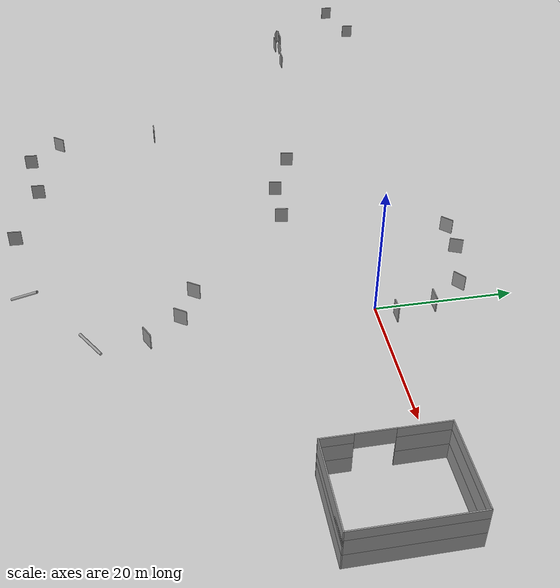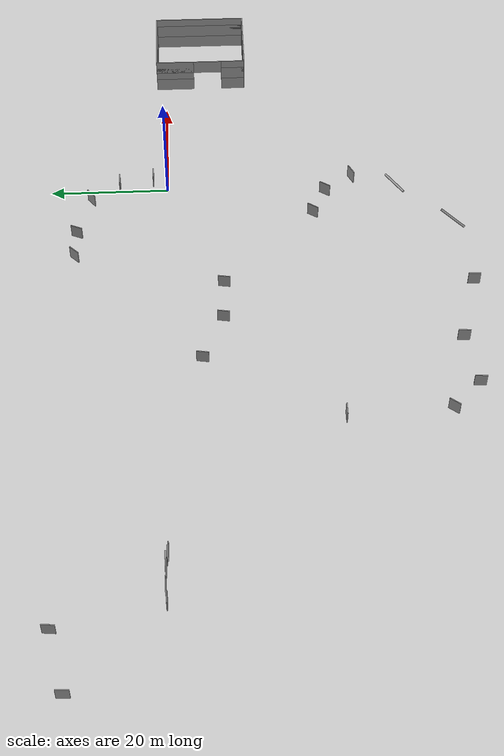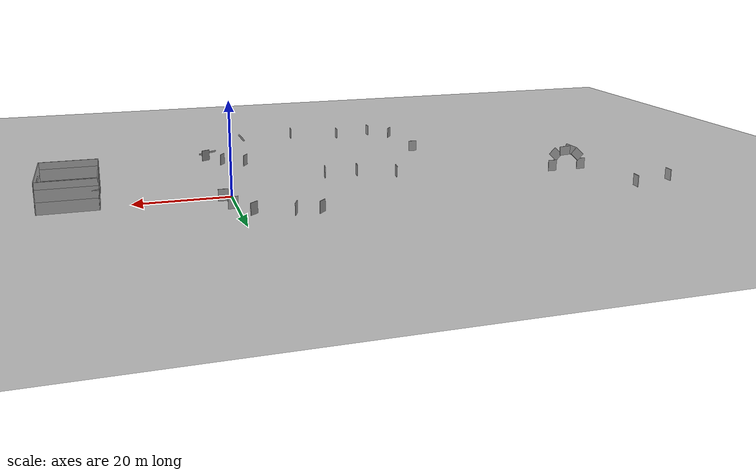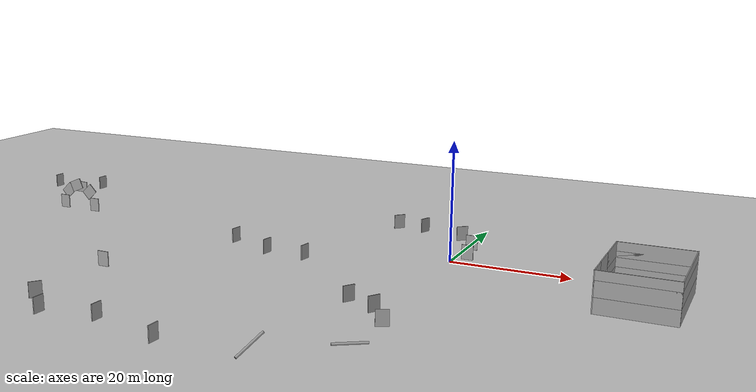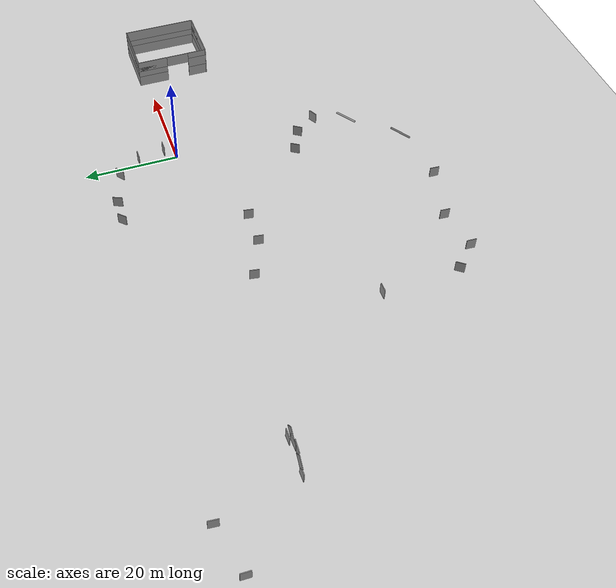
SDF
<sdf version="1.6">
 <world name="default">
  <model name="ground_plane">
   <static>1</static>
   <link name="link">
    <collision name="collision">
     <geometry><plane><normal>0 0 1</normal><size>100 100</size></plane></geometry>
     <surface><friction><ode><mu>100</mu><mu2>50</mu2></ode></friction></surface>
    </collision>
    <visual name="visual">
     <cast_shadows>0</cast_shadows>
     <geometry><plane><normal>0 0 1</normal><size>100 100</size></plane></geometry>
     <material>
      <script><uri>file://media/materials/scripts/gazebo.material</uri><name>Gazebo/Grey</name></script>
     </material>
    </visual>
   </link>
  </model>
  <model name="PaperTestTunnelHouse">
   <pose>31.9195 -6.3195 0 0 -0 0</pose>
   <link name="Wall_10">
    <collision name="Wall_10_Collision">
     <geometry><box><size>4.25 0.15 2.5</size></box></geometry>
     <pose>0 0 1.25 0 -0 0</pose>
    </collision>
    <visual name="Wall_10_Visual">
     <pose>0 0 1.25 0 -0 0</pose>
     <geometry><box><size>4.25 0.15 2.5</size></box></geometry>
     <material>
      <script><uri>file://media/materials/scripts/gazebo.material</uri><name>Gazebo/Grey</name></script>
      <ambient>1 1 1 1</ambient>
     </material>
     <meta><layer>0</layer></meta>
    </visual>
    <pose>-5.925 -5.875 0 0 -0 1.5708</pose>
   </link>
   <link name="Wall_6">
    <collision name="Wall_6_Collision">
     <geometry><box><size>6.75 0.15 2.5</size></box></geometry>
     <pose>0 0 1.25 0 -0 0</pose>
    </collision>
    <visual name="Wall_6_Visual">
     <pose>0 0 1.25 0 -0 0</pose>
     <geometry><box><size>6.75 0.15 2.5</size></box></geometry>
     <material>
      <script><uri>file://media/materials/scripts/gazebo.material</uri><name>Gazebo/Grey</name></script>
      <ambient>1 1 1 1</ambient>
     </material>
     <meta><layer>0</layer></meta>
    </visual>
    <pose>-5.925 4.625 0 0 -0 1.5708</pose>
   </link>
   <link name="Wall_7">
    <collision name="Wall_7_Collision">
     <geometry><box><size>12 0.15 2.5</size></box></geometry>
     <pose>0 0 1.25 0 -0 0</pose>
    </collision>
    <visual name="Wall_7_Visual">
     <pose>0 0 1.25 0 -0 0</pose>
     <geometry><box><size>12 0.15 2.5</size></box></geometry>
     <material>
      <script><uri>file://media/materials/scripts/gazebo.material</uri><name>Gazebo/Grey</name></script>
      <ambient>1 1 1 1</ambient>
     </material>
     <meta><layer>0</layer></meta>
    </visual>
    <pose>-0 7.925 0 0 -0 0</pose>
   </link>
   <link name="Wall_8">
    <collision name="Wall_8_Collision">
     <geometry><box><size>16 0.15 2.5</size></box></geometry>
     <pose>0 0 1.25 0 -0 0</pose>
    </collision>
    <visual name="Wall_8_Visual">
     <pose>0 0 1.25 0 -0 0</pose>
     <geometry><box><size>16 0.15 2.5</size></box></geometry>
     <material>
      <script><uri>file://media/materials/scripts/gazebo.material</uri><name>Gazebo/Grey</name></script>
      <ambient>1 1 1 1</ambient>
     </material>
     <meta><layer>0</layer></meta>
    </visual>
    <pose>5.925 0 0 0 -0 -1.5708</pose>
   </link>
   <link name="Wall_9">
    <collision name="Wall_9_Collision">
     <geometry><box><size>12 0.15 2.5</size></box></geometry>
     <pose>0 0 1.25 0 -0 0</pose>
    </collision>
    <visual name="Wall_9_Visual">
     <pose>0 0 1.25 0 -0 0</pose>
     <geometry><box><size>12 0.15 2.5</size></box></geometry>
     <material>
      <script><uri>file://media/materials/scripts/gazebo.material</uri><name>Gazebo/Grey</name></script>
      <ambient>1 1 1 1</ambient>
     </material>
     <meta><layer>0</layer></meta>
    </visual>
    <pose>-0 -7.925 0 0 -0 3.14159</pose>
   </link>
   <static>1</static>
  </model>
  <model name="PaperTestTunnelHouse_0">
   <pose>31.9195 -6.319 2.5 0 -0 0</pose>
   <link name="Wall_10">
    <collision name="Wall_10_Collision">
     <geometry><box><size>4.25 0.15 2.5</size></box></geometry>
     <pose>0 0 1.25 0 -0 0</pose>
    </collision>
    <visual name="Wall_10_Visual">
     <pose>0 0 1.25 0 -0 0</pose>
     <geometry><box><size>4.25 0.15 2.5</size></box></geometry>
     <material>
      <script><uri>file://media/materials/scripts/gazebo.material</uri><name>Gazebo/Grey</name></script>
      <ambient>1 1 1 1</ambient>
     </material>
     <meta><layer>0</layer></meta>
    </visual>
    <pose>-5.925 -5.875 0 0 -0 1.5708</pose>
   </link>
   <link name="Wall_6">
    <collision name="Wall_6_Collision">
     <geometry><box><size>6.75 0.15 2.5</size></box></geometry>
     <pose>0 0 1.25 0 -0 0</pose>
    </collision>
    <visual name="Wall_6_Visual">
     <pose>0 0 1.25 0 -0 0</pose>
     <geometry><box><size>6.75 0.15 2.5</size></box></geometry>
     <material>
      <script><uri>file://media/materials/scripts/gazebo.material</uri><name>Gazebo/Grey</name></script>
      <ambient>1 1 1 1</ambient>
     </material>
     <meta><layer>0</layer></meta>
    </visual>
    <pose>-5.925 4.625 0 0 -0 1.5708</pose>
   </link>
   <link name="Wall_7">
    <collision name="Wall_7_Collision">
     <geometry><box><size>12 0.15 2.5</size></box></geometry>
     <pose>0 0 1.25 0 -0 0</pose>
    </collision>
    <visual name="Wall_7_Visual">
     <pose>0 0 1.25 0 -0 0</pose>
     <geometry><box><size>12 0.15 2.5</size></box></geometry>
     <material>
      <script><uri>file://media/materials/scripts/gazebo.material</uri><name>Gazebo/Grey</name></script>
      <ambient>1 1 1 1</ambient>
     </material>
     <meta><layer>0</layer></meta>
    </visual>
    <pose>-0 7.925 0 0 -0 0</pose>
   </link>
   <link name="Wall_8">
    <collision name="Wall_8_Collision">
     <geometry><box><size>16 0.15 2.5</size></box></geometry>
     <pose>0 0 1.25 0 -0 0</pose>
    </collision>
    <visual name="Wall_8_Visual">
     <pose>0 0 1.25 0 -0 0</pose>
     <geometry><box><size>16 0.15 2.5</size></box></geometry>
     <material>
      <script><uri>file://media/materials/scripts/gazebo.material</uri><name>Gazebo/Grey</name></script>
      <ambient>1 1 1 1</ambient>
     </material>
     <meta><layer>0</layer></meta>
    </visual>
    <pose>5.925 0 0 0 -0 -1.5708</pose>
   </link>
   <link name="Wall_9">
    <collision name="Wall_9_Collision">
     <geometry><box><size>12 0.15 2.5</size></box></geometry>
     <pose>0 0 1.25 0 -0 0</pose>
    </collision>
    <visual name="Wall_9_Visual">
     <pose>0 0 1.25 0 -0 0</pose>
     <geometry><box><size>12 0.15 2.5</size></box></geometry>
     <material>
      <script><uri>file://media/materials/scripts/gazebo.material</uri><name>Gazebo/Grey</name></script>
      <ambient>1 1 1 1</ambient>
     </material>
     <meta><layer>0</layer></meta>
    </visual>
    <pose>-0 -7.925 0 0 -0 3.14159</pose>
   </link>
   <static>1</static>
  </model>
  <model name="5mWall">
   <pose>25.971 -7.56033 4 0 -0 0</pose>
   <link name="Wall_0">
    <collision name="Wall_0_Collision">
     <geometry><box><size>5 0.15 2.5</size></box></geometry>
     <pose>0 0 1.25 0 -0 0</pose>
    </collision>
    <visual name="Wall_0_Visual">
     <pose>0 0 1.25 0 -0 0</pose>
     <geometry><box><size>5 0.15 2.5</size></box></geometry>
     <material>
      <script><uri>file://media/materials/scripts/gazebo.material</uri><name>Gazebo/Grey</name></script>
      <ambient>1 1 1 1</ambient>
     </material>
     <meta><layer>0</layer></meta>
    </visual>
    <pose>0 -0 0 0 -0 1.5708</pose>
   </link>
   <static>1</static>
  </model>
  <model name="PaperTestTunnelHouse_1">
   <pose>31.9195 -6.319 4 0 -0 0</pose>
   <link name="Wall_10">
    <collision name="Wall_10_Collision">
     <geometry><box><size>4.25 0.15 2.5</size></box></geometry>
     <pose>0 0 1.25 0 -0 0</pose>
    </collision>
    <visual name="Wall_10_Visual">
     <pose>0 0 1.25 0 -0 0</pose>
     <geometry><box><size>4.25 0.15 2.5</size></box></geometry>
     <material>
      <script><uri>file://media/materials/scripts/gazebo.material</uri><name>Gazebo/Grey</name></script>
      <ambient>1 1 1 1</ambient>
     </material>
     <meta><layer>0</layer></meta>
    </visual>
    <pose>-5.925 -5.875 0 0 -0 1.5708</pose>
   </link>
   <link name="Wall_6">
    <collision name="Wall_6_Collision">
     <geometry><box><size>6.75 0.15 2.5</size></box></geometry>
     <pose>0 0 1.25 0 -0 0</pose>
    </collision>
    <visual name="Wall_6_Visual">
     <pose>0 0 1.25 0 -0 0</pose>
     <geometry><box><size>6.75 0.15 2.5</size></box></geometry>
     <material>
      <script><uri>file://media/materials/scripts/gazebo.material</uri><name>Gazebo/Grey</name></script>
      <ambient>1 1 1 1</ambient>
     </material>
     <meta><layer>0</layer></meta>
    </visual>
    <pose>-5.925 4.625 0 0 -0 1.5708</pose>
   </link>
   <link name="Wall_7">
    <collision name="Wall_7_Collision">
     <geometry><box><size>12 0.15 2.5</size></box></geometry>
     <pose>0 0 1.25 0 -0 0</pose>
    </collision>
    <visual name="Wall_7_Visual">
     <pose>0 0 1.25 0 -0 0</pose>
     <geometry><box><size>12 0.15 2.5</size></box></geometry>
     <material>
      <script><uri>file://media/materials/scripts/gazebo.material</uri><name>Gazebo/Grey</name></script>
      <ambient>1 1 1 1</ambient>
     </material>
     <meta><layer>0</layer></meta>
    </visual>
    <pose>-0 7.925 0 0 -0 0</pose>
   </link>
   <link name="Wall_8">
    <collision name="Wall_8_Collision">
     <geometry><box><size>16 0.15 2.5</size></box></geometry>
     <pose>0 0 1.25 0 -0 0</pose>
    </collision>
    <visual name="Wall_8_Visual">
     <pose>0 0 1.25 0 -0 0</pose>
     <geometry><box><size>16 0.15 2.5</size></box></geometry>
     <material>
      <script><uri>file://media/materials/scripts/gazebo.material</uri><name>Gazebo/Grey</name></script>
      <ambient>1 1 1 1</ambient>
     </material>
     <meta><layer>0</layer></meta>
    </visual>
    <pose>5.925 0 0 0 -0 -1.5708</pose>
   </link>
   <link name="Wall_9">
    <collision name="Wall_9_Collision">
     <geometry><box><size>12 0.15 2.5</size></box></geometry>
     <pose>0 0 1.25 0 -0 0</pose>
    </collision>
    <visual name="Wall_9_Visual">
     <pose>0 0 1.25 0 -0 0</pose>
     <geometry><box><size>12 0.15 2.5</size></box></geometry>
     <material>
      <script><uri>file://media/materials/scripts/gazebo.material</uri><name>Gazebo/Grey</name></script>
      <ambient>1 1 1 1</ambient>
     </material>
     <meta><layer>0</layer></meta>
    </visual>
    <pose>-0 -7.925 0 0 -0 3.14159</pose>
   </link>
   <static>1</static>
  </model>
  <model name="empty_pillar_1">
   <link name="link">
    <inertial>
     <mass>1</mass>
     <inertia><ixx>0.145833</ixx><ixy>0</ixy><ixz>0</ixz><iyy>0.145833</iyy><iyz>0</iyz><izz>0.125</izz></inertia>
    </inertial>
    <visual name="visual">
     <geometry><cylinder><radius>0.2</radius><length>5</length></cylinder></geometry>
     <material>
      <script><name>Gazebo/Grey</name><uri>file://media/materials/scripts/gazebo.material</uri></script>
      <shader type="vertex"><normal_map>__default__</normal_map></shader>
      <ambient>0.3 0.3 0.3 1</ambient>
      <diffuse>0.7 0.7 0.7 1</diffuse>
      <specular>0.01 0.01 0.01 1</specular>
      <emissive>0 0 0 1</emissive>
     </material>
    </visual>
    <collision name="collision">
     <geometry><cylinder><radius>0.05</radius><length>5</length></cylinder></geometry>
     <surface>
      <friction>
       <ode><mu>1</mu><mu2>1</mu2><fdir1>0 0 0</fdir1><slip1>0</slip1><slip2>0</slip2></ode>
       <torsional>
        <coefficient>1</coefficient>
        <patch_radius>0</patch_radius>
        <surface_radius>0</surface_radius>
        <use_patch_radius>1</use_patch_radius>
        <ode><slip>0</slip></ode>
       </torsional>
      </friction>
      <bounce><restitution_coefficient>0</restitution_coefficient><threshold>1e+06</threshold></bounce>
      <contact>
       <collide_without_contact>0</collide_without_contact>
       <collide_without_contact_bitmask>1</collide_without_contact_bitmask>
       <collide_bitmask>1</collide_bitmask>
       <ode>
        <soft_cfm>0</soft_cfm>
        <soft_erp>0.2</soft_erp>
        <kp>1e+13</kp>
        <kd>1</kd>
        <max_vel>0.01</max_vel>
        <min_depth>0</min_depth>
       </ode>
       <bullet>
        <split_impulse>1</split_impulse>
        <split_impulse_penetration_threshold>-0.01</split_impulse_penetration_threshold>
        <soft_cfm>0</soft_cfm>
        <soft_erp>0.2</soft_erp>
        <kp>1e+13</kp>
        <kd>1</kd>
       </bullet>
      </contact>
     </surface>
    </collision>
   </link>
   <static>0</static>
   <pose>0.363161 -39.6227 0.049996 -1.5708 0.874188 2.14689</pose>
  </model>
  <model name="empty_pillar_2">
   <link name="link">
    <inertial>
     <mass>1</mass>
     <inertia><ixx>0.145833</ixx><ixy>0</ixy><ixz>0</ixz><iyy>0.145833</iyy><iyz>0</iyz><izz>0.125</izz></inertia>
    </inertial>
    <visual name="visual">
     <geometry><cylinder><radius>0.2</radius><length>5</length></cylinder></geometry>
     <material>
      <script><name>Gazebo/Grey</name><uri>file://media/materials/scripts/gazebo.material</uri></script>
      <shader type="vertex"><normal_map>__default__</normal_map></shader>
      <ambient>0.3 0.3 0.3 1</ambient>
      <diffuse>0.7 0.7 0.7 1</diffuse>
      <specular>0.01 0.01 0.01 1</specular>
      <emissive>0 0 0 1</emissive>
     </material>
    </visual>
    <collision name="collision">
     <geometry><cylinder><radius>0.05</radius><length>5</length></cylinder></geometry>
     <surface>
      <friction>
       <ode><mu>1</mu><mu2>1</mu2><fdir1>0 0 0</fdir1><slip1>0</slip1><slip2>0</slip2></ode>
       <torsional>
        <coefficient>1</coefficient>
        <patch_radius>0</patch_radius>
        <surface_radius>0</surface_radius>
        <use_patch_radius>1</use_patch_radius>
        <ode><slip>0</slip></ode>
       </torsional>
      </friction>
      <bounce><restitution_coefficient>0</restitution_coefficient><threshold>1e+06</threshold></bounce>
      <contact>
       <collide_without_contact>0</collide_without_contact>
       <collide_without_contact_bitmask>1</collide_without_contact_bitmask>
       <collide_bitmask>1</collide_bitmask>
       <ode>
        <soft_cfm>0</soft_cfm>
        <soft_erp>0.2</soft_erp>
        <kp>1e+13</kp>
        <kd>1</kd>
        <max_vel>0.01</max_vel>
        <min_depth>0</min_depth>
       </ode>
       <bullet>
        <split_impulse>1</split_impulse>
        <split_impulse_penetration_threshold>-0.01</split_impulse_penetration_threshold>
        <soft_cfm>0</soft_cfm>
        <soft_erp>0.2</soft_erp>
        <kp>1e+13</kp>
        <kd>1</kd>
       </bullet>
      </contact>
     </surface>
    </collision>
   </link>
   <static>0</static>
   <pose>-9.49837 -48.5314 1.27145 -0.654462 0.903234 0.362243</pose>
  </model>
  <model name="2mWall_3">
   <pose>2.10228 2.41901 0 0 -0 0</pose>
   <link name="Wall_0">
    <collision name="Wall_0_Collision">
     <geometry><box><size>2 0.15 2.5</size></box></geometry>
     <pose>0 0 1.25 0 -0 0</pose>
    </collision>
    <visual name="Wall_0_Visual">
     <pose>0 0 1.25 0 -0 0</pose>
     <geometry><box><size>2 0.15 2.5</size></box></geometry>
     <material>
      <script><uri>file://media/materials/scripts/gazebo.material</uri><name>Gazebo/Grey</name></script>
      <ambient>1 1 1 1</ambient>
     </material>
     <meta><layer>0</layer></meta>
    </visual>
   </link>
   <static>1</static>
  </model>
  <model name="2mWall_4">
   <pose>-10.1702 15.3219 0 0 -0 1.16983</pose>
   <link name="Wall_0">
    <collision name="Wall_0_Collision">
     <geometry><box><size>2 0.15 2.5</size></box></geometry>
     <pose>0 0 1.25 0 -0 0</pose>
    </collision>
    <visual name="Wall_0_Visual">
     <pose>0 0 1.25 0 -0 0</pose>
     <geometry><box><size>2 0.15 2.5</size></box></geometry>
     <material>
      <script><uri>file://media/materials/scripts/gazebo.material</uri><name>Gazebo/Grey</name></script>
      <ambient>1 1 1 1</ambient>
     </material>
     <meta><layer>0</layer></meta>
    </visual>
   </link>
   <static>1</static>
  </model>
  <model name="2mWall_7">
   <pose>-49.3322 -27.3207 0 0 -0 0</pose>
   <link name="Wall_0">
    <collision name="Wall_0_Collision">
     <geometry><box><size>2 0.15 2.5</size></box></geometry>
     <pose>0 0 1.25 0 -0 0</pose>
    </collision>
    <visual name="Wall_0_Visual">
     <pose>0 0 1.25 0 -0 0</pose>
     <geometry><box><size>2 0.15 2.5</size></box></geometry>
     <material>
      <script><uri>file://media/materials/scripts/gazebo.material</uri><name>Gazebo/Grey</name></script>
      <ambient>1 1 1 1</ambient>
     </material>
     <meta><layer>0</layer></meta>
    </visual>
   </link>
   <static>1</static>
  </model>
  <model name="2mWall_11">
   <pose>-80.5459 0.435841 0 0 -0 0</pose>
   <link name="Wall_0">
    <collision name="Wall_0_Collision">
     <geometry><box><size>2 0.15 2.5</size></box></geometry>
     <pose>0 0 1.25 0 -0 0</pose>
    </collision>
    <visual name="Wall_0_Visual">
     <pose>0 0 1.25 0 -0 0</pose>
     <geometry><box><size>2 0.15 2.5</size></box></geometry>
     <material>
      <script><uri>file://media/materials/scripts/gazebo.material</uri><name>Gazebo/Grey</name></script>
      <ambient>1 1 1 1</ambient>
     </material>
     <meta><layer>0</layer></meta>
    </visual>
   </link>
   <static>1</static>
  </model>
  <model name="2mWall_11_clone">
   <pose>-73.3311 0.380501 0 0 -0 0</pose>
   <link name="Wall_0">
    <collision name="Wall_0_Collision">
     <geometry><box><size>2 0.15 2.5</size></box></geometry>
     <pose>0 0 1.25 0 -0 0</pose>
    </collision>
    <visual name="Wall_0_Visual">
     <pose>0 0 1.25 0 -0 0</pose>
     <geometry><box><size>2 0.15 2.5</size></box></geometry>
     <material>
      <script><uri>file://media/materials/scripts/gazebo.material</uri><name>Gazebo/Grey</name></script>
      <ambient>1 1 1 1</ambient>
     </material>
     <meta><layer>0</layer></meta>
    </visual>
   </link>
   <static>1</static>
  </model>
  <model name="2mWall_11_clone_0">
   <pose>-80.3991 0.506506 2.684 0 0.816528 0</pose>
   <link name="Wall_0">
    <collision name="Wall_0_Collision">
     <geometry><box><size>2 0.15 2.5</size></box></geometry>
     <pose>0 0 1.25 0 -0 0</pose>
    </collision>
    <visual name="Wall_0_Visual">
     <pose>0 0 1.25 0 -0 0</pose>
     <geometry><box><size>2 0.15 2.5</size></box></geometry>
     <material>
      <script><uri>file://media/materials/scripts/gazebo.material</uri><name>Gazebo/Grey</name></script>
      <ambient>1 1 1 1</ambient>
     </material>
     <meta><layer>0</layer></meta>
    </visual>
   </link>
   <static>1</static>
  </model>
  <model name="2mWall_11_clone_0_clone">
   <pose>-75.059 0.119832 2.90318 0 0.816528 0</pose>
   <link name="Wall_0">
    <collision name="Wall_0_Collision">
     <geometry><box><size>2 0.15 2.5</size></box></geometry>
     <pose>0 0 1.25 0 -0 0</pose>
    </collision>
    <visual name="Wall_0_Visual">
     <pose>0 0 1.25 0 -0 0</pose>
     <geometry><box><size>2 0.15 2.5</size></box></geometry>
     <material>
      <script><uri>file://media/materials/scripts/gazebo.material</uri><name>Gazebo/Grey</name></script>
      <ambient>1 1 1 1</ambient>
     </material>
     <meta><layer>0</layer></meta>
    </visual>
   </link>
   <static>1</static>
  </model>
  <model name="2mWall_11_clone_0_clone_0">
   <pose>-77.5474 0.489779 4.61692 3.14159 1.52824 3.14159</pose>
   <link name="Wall_0">
    <collision name="Wall_0_Collision">
     <geometry><box><size>2 0.15 2.5</size></box></geometry>
     <pose>0 0 1.25 0 -0 0</pose>
    </collision>
    <visual name="Wall_0_Visual">
     <pose>0 0 1.25 0 -0 0</pose>
     <geometry><box><size>2 0.15 2.5</size></box></geometry>
     <material>
      <script><uri>file://media/materials/scripts/gazebo.material</uri><name>Gazebo/Grey</name></script>
      <ambient>1 1 1 1</ambient>
     </material>
     <meta><layer>0</layer></meta>
    </visual>
   </link>
   <static>1</static>
  </model>
  <model name="2mWall_11_clone_0_clone_0_clone">
   <pose>-78.6518 0.388218 4.2827 0 1.18388 0</pose>
   <link name="Wall_0">
    <collision name="Wall_0_Collision">
     <geometry><box><size>2 0.15 2.5</size></box></geometry>
     <pose>0 0 1.25 0 -0 0</pose>
    </collision>
    <visual name="Wall_0_Visual">
     <pose>0 0 1.25 0 -0 0</pose>
     <geometry><box><size>2 0.15 2.5</size></box></geometry>
     <material>
      <script><uri>file://media/materials/scripts/gazebo.material</uri><name>Gazebo/Grey</name></script>
      <ambient>1 1 1 1</ambient>
     </material>
     <meta><layer>0</layer></meta>
    </visual>
   </link>
   <static>1</static>
  </model>
  <model name="2mWall">
   <pose>-34.7664 -47.2587 0 0 -0 1.51711</pose>
   <link name="Wall_0">
    <collision name="Wall_0_Collision">
     <geometry><box><size>2 0.15 2.5</size></box></geometry>
     <pose>0 0 1.25 0 -0 0</pose>
    </collision>
    <visual name="Wall_0_Visual">
     <pose>0 0 1.25 0 -0 0</pose>
     <geometry><box><size>2 0.15 2.5</size></box></geometry>
     <material>
      <script><uri>file://media/materials/scripts/gazebo.material</uri><name>Gazebo/Grey</name></script>
      <ambient>1 1 1 1</ambient>
     </material>
     <meta><layer>0</layer></meta>
    </visual>
   </link>
   <static>1</static>
  </model>
  <model name="2mWall_clone">
   <pose>-22.9675 -50.415 0 0 -0 1.51711</pose>
   <link name="Wall_0">
    <collision name="Wall_0_Collision">
     <geometry><box><size>2 0.15 2.5</size></box></geometry>
     <pose>0 0 1.25 0 -0 0</pose>
    </collision>
    <visual name="Wall_0_Visual">
     <pose>0 0 1.25 0 -0 0</pose>
     <geometry><box><size>2 0.15 2.5</size></box></geometry>
     <material>
      <script><uri>file://media/materials/scripts/gazebo.material</uri><name>Gazebo/Grey</name></script>
      <ambient>1 1 1 1</ambient>
     </material>
     <meta><layer>0</layer></meta>
    </visual>
   </link>
   <static>1</static>
  </model>
  <model name="2mWall_17">
   <pose>-84.3059 16.8578 0 0 -0 1.47872</pose>
   <link name="Wall_0">
    <collision name="Wall_0_Collision">
     <geometry><box><size>2 0.15 2.5</size></box></geometry>
     <pose>0 0 1.25 0 -0 0</pose>
    </collision>
    <visual name="Wall_0_Visual">
     <pose>0 0 1.25 0 -0 0</pose>
     <geometry><box><size>2 0.15 2.5</size></box></geometry>
     <material>
      <script><uri>file://media/materials/scripts/gazebo.material</uri><name>Gazebo/Grey</name></script>
      <ambient>1 1 1 1</ambient>
     </material>
     <meta><layer>0</layer></meta>
    </visual>
   </link>
   <static>1</static>
  </model>
  <model name="2mWall_18">
   <pose>-94.0413 14.5273 0 0 0 -1.59625</pose>
   <link name="Wall_0">
    <collision name="Wall_0_Collision">
     <geometry><box><size>2 0.15 2.5</size></box></geometry>
     <pose>0 0 1.25 0 -0 0</pose>
    </collision>
    <visual name="Wall_0_Visual">
     <pose>0 0 1.25 0 -0 0</pose>
     <geometry><box><size>2 0.15 2.5</size></box></geometry>
     <material>
      <script><uri>file://media/materials/scripts/gazebo.material</uri><name>Gazebo/Grey</name></script>
      <ambient>1 1 1 1</ambient>
     </material>
     <meta><layer>0</layer></meta>
    </visual>
   </link>
   <static>1</static>
  </model>
  <model name="2mWall_3_clone">
   <pose>0.934458 8.21854 0 0 -0 0.005789</pose>
   <link name="Wall_0">
    <collision name="Wall_0_Collision">
     <geometry><box><size>2 0.15 2.5</size></box></geometry>
     <pose>0 0 1.25 0 -0 0</pose>
    </collision>
    <visual name="Wall_0_Visual">
     <pose>0 0 1.25 0 -0 0</pose>
     <geometry><box><size>2 0.15 2.5</size></box></geometry>
     <material>
      <script><uri>file://media/materials/scripts/gazebo.material</uri><name>Gazebo/Grey</name></script>
      <ambient>1 1 1 1</ambient>
     </material>
     <meta><layer>0</layer></meta>
    </visual>
   </link>
   <static>1</static>
  </model>
  <model name="2mWall_3_clone_clone">
   <pose>-2.39772 13.0333 0 0 -0 0.683141</pose>
   <link name="Wall_0">
    <collision name="Wall_0_Collision">
     <geometry><box><size>2 0.15 2.5</size></box></geometry>
     <pose>0 0 1.25 0 -0 0</pose>
    </collision>
    <visual name="Wall_0_Visual">
     <pose>0 0 1.25 0 -0 0</pose>
     <geometry><box><size>2 0.15 2.5</size></box></geometry>
     <material>
      <script><uri>file://media/materials/scripts/gazebo.material</uri><name>Gazebo/Grey</name></script>
      <ambient>1 1 1 1</ambient>
     </material>
     <meta><layer>0</layer></meta>
    </visual>
   </link>
   <static>1</static>
  </model>
  <model name="2mWall_32">
   <pose>-29.353 -8.92586 0 0 0 -1.72426</pose>
   <link name="Wall_0">
    <collision name="Wall_0_Collision">
     <geometry><box><size>2 0.15 2.5</size></box></geometry>
     <pose>0 0 1.25 0 -0 0</pose>
    </collision>
    <visual name="Wall_0_Visual">
     <pose>0 0 1.25 0 -0 0</pose>
     <geometry><box><size>2 0.15 2.5</size></box></geometry>
     <material>
      <script><uri>file://media/materials/scripts/gazebo.material</uri><name>Gazebo/Grey</name></script>
      <ambient>1 1 1 1</ambient>
     </material>
     <meta><layer>0</layer></meta>
    </visual>
   </link>
   <static>1</static>
  </model>
  <model name="2mWall_33">
   <pose>-6.72212 -24.8225 0 0 -0 0.993249</pose>
   <link name="Wall_0">
    <collision name="Wall_0_Collision">
     <geometry><box><size>2 0.15 2.5</size></box></geometry>
     <pose>0 0 1.25 0 -0 0</pose>
    </collision>
    <visual name="Wall_0_Visual">
     <pose>0 0 1.25 0 -0 0</pose>
     <geometry><box><size>2 0.15 2.5</size></box></geometry>
     <material>
      <script><uri>file://media/materials/scripts/gazebo.material</uri><name>Gazebo/Grey</name></script>
      <ambient>1 1 1 1</ambient>
     </material>
     <meta><layer>0</layer></meta>
    </visual>
   </link>
   <static>1</static>
  </model>
  <model name="2mWall_33_clone">
   <pose>-1.67331 -27.2035 0 0 -0 0.993249</pose>
   <link name="Wall_0">
    <collision name="Wall_0_Collision">
     <geometry><box><size>2 0.15 2.5</size></box></geometry>
     <pose>0 0 1.25 0 -0 0</pose>
    </collision>
    <visual name="Wall_0_Visual">
     <pose>0 0 1.25 0 -0 0</pose>
     <geometry><box><size>2 0.15 2.5</size></box></geometry>
     <material>
      <script><uri>file://media/materials/scripts/gazebo.material</uri><name>Gazebo/Grey</name></script>
      <ambient>1 1 1 1</ambient>
     </material>
     <meta><layer>0</layer></meta>
    </visual>
   </link>
   <static>1</static>
  </model>
  <model name="2mWall_33_clone_0">
   <pose>1.6673 -32.0108 0 0 -0 0.463512</pose>
   <link name="Wall_0">
    <collision name="Wall_0_Collision">
     <geometry><box><size>2 0.15 2.5</size></box></geometry>
     <pose>0 0 1.25 0 -0 0</pose>
    </collision>
    <visual name="Wall_0_Visual">
     <pose>0 0 1.25 0 -0 0</pose>
     <geometry><box><size>2 0.15 2.5</size></box></geometry>
     <material>
      <script><uri>file://media/materials/scripts/gazebo.material</uri><name>Gazebo/Grey</name></script>
      <ambient>1 1 1 1</ambient>
     </material>
     <meta><layer>0</layer></meta>
    </visual>
   </link>
   <static>1</static>
  </model>
  <model name="2mWall_4_clone_0">
   <pose>-15.2911 15.5794 0 0 -0 0.804554</pose>
   <link name="Wall_0">
    <collision name="Wall_0_Collision">
     <geometry><box><size>2 0.15 2.5</size></box></geometry>
     <pose>0 0 1.25 0 -0 0</pose>
    </collision>
    <visual name="Wall_0_Visual">
     <pose>0 0 1.25 0 -0 0</pose>
     <geometry><box><size>2 0.15 2.5</size></box></geometry>
     <material>
      <script><uri>file://media/materials/scripts/gazebo.material</uri><name>Gazebo/Grey</name></script>
      <ambient>1 1 1 1</ambient>
     </material>
     <meta><layer>0</layer></meta>
    </visual>
   </link>
   <static>1</static>
  </model>
  <model name="2mWall_32_clone">
   <pose>-37.5355 -5.41311 0 0 0 -1.72426</pose>
   <link name="Wall_0">
    <collision name="Wall_0_Collision">
     <geometry><box><size>2 0.15 2.5</size></box></geometry>
     <pose>0 0 1.25 0 -0 0</pose>
    </collision>
    <visual name="Wall_0_Visual">
     <pose>0 0 1.25 0 -0 0</pose>
     <geometry><box><size>2 0.15 2.5</size></box></geometry>
     <material>
      <script><uri>file://media/materials/scripts/gazebo.material</uri><name>Gazebo/Grey</name></script>
      <ambient>1 1 1 1</ambient>
     </material>
     <meta><layer>0</layer></meta>
    </visual>
   </link>
   <static>1</static>
  </model>
  <model name="2mWall_32_clone_0">
   <pose>-22.0375 -9.25022 0 0 0 -1.72426</pose>
   <link name="Wall_0">
    <collision name="Wall_0_Collision">
     <geometry><box><size>2 0.15 2.5</size></box></geometry>
     <pose>0 0 1.25 0 -0 0</pose>
    </collision>
    <visual name="Wall_0_Visual">
     <pose>0 0 1.25 0 -0 0</pose>
     <geometry><box><size>2 0.15 2.5</size></box></geometry>
     <material>
      <script><uri>file://media/materials/scripts/gazebo.material</uri><name>Gazebo/Grey</name></script>
      <ambient>1 1 1 1</ambient>
     </material>
     <meta><layer>0</layer></meta>
    </visual>
   </link>
   <static>1</static>
  </model>
  <model name="2mWall_clone_0">
   <pose>-43.9002 -48.6826 0 0 -0 1.51711</pose>
   <link name="Wall_0">
    <collision name="Wall_0_Collision">
     <geometry><box><size>2 0.15 2.5</size></box></geometry>
     <pose>0 0 1.25 0 -0 0</pose>
    </collision>
    <visual name="Wall_0_Visual">
     <pose>0 0 1.25 0 -0 0</pose>
     <geometry><box><size>2 0.15 2.5</size></box></geometry>
     <material>
      <script><uri>file://media/materials/scripts/gazebo.material</uri><name>Gazebo/Grey</name></script>
      <ambient>1 1 1 1</ambient>
     </material>
     <meta><layer>0</layer></meta>
    </visual>
   </link>
   <static>1</static>
  </model>
  <model name="2mWall_clone_1">
   <pose>-48.6431 -44.0115 0 0 -0 0.916756</pose>
   <link name="Wall_0">
    <collision name="Wall_0_Collision">
     <geometry><box><size>2 0.15 2.5</size></box></geometry>
     <pose>0 0 1.25 0 -0 0</pose>
    </collision>
    <visual name="Wall_0_Visual">
     <pose>0 0 1.25 0 -0 0</pose>
     <geometry><box><size>2 0.15 2.5</size></box></geometry>
     <material>
      <script><uri>file://media/materials/scripts/gazebo.material</uri><name>Gazebo/Grey</name></script>
      <ambient>1 1 1 1</ambient>
     </material>
     <meta><layer>0</layer></meta>
    </visual>
   </link>
   <static>1</static>
  </model>
 </world>
</sdf>
